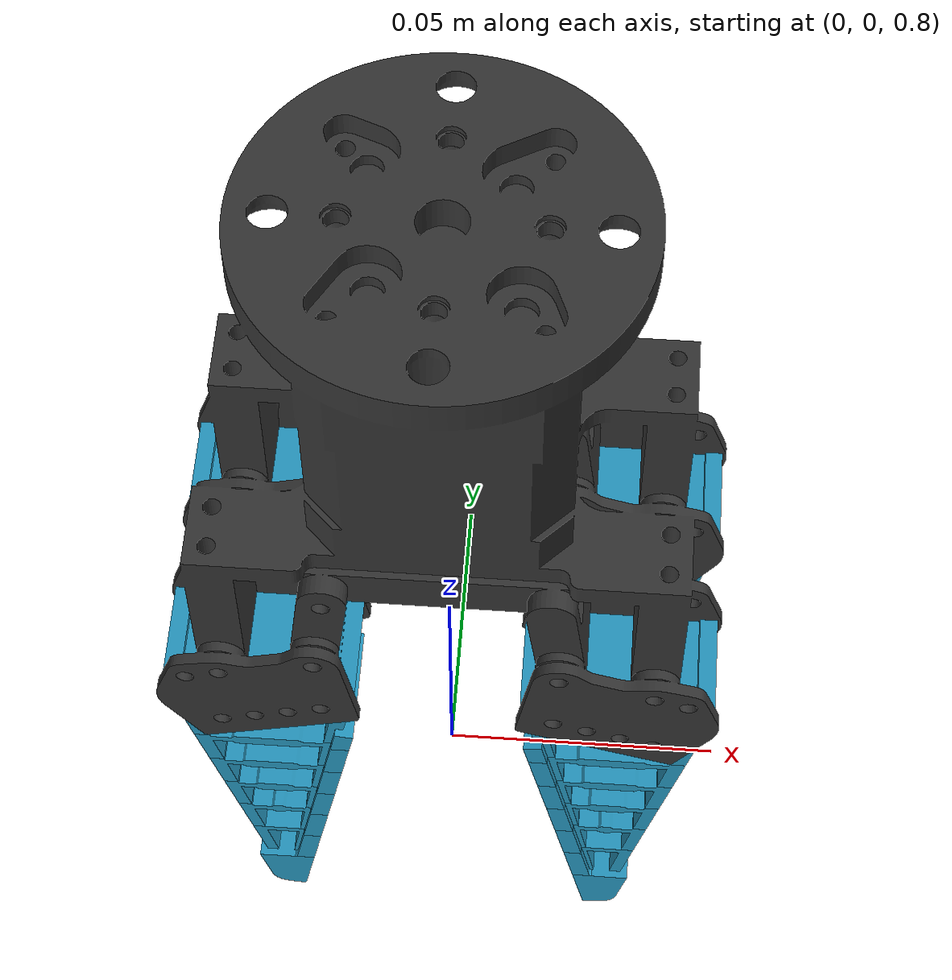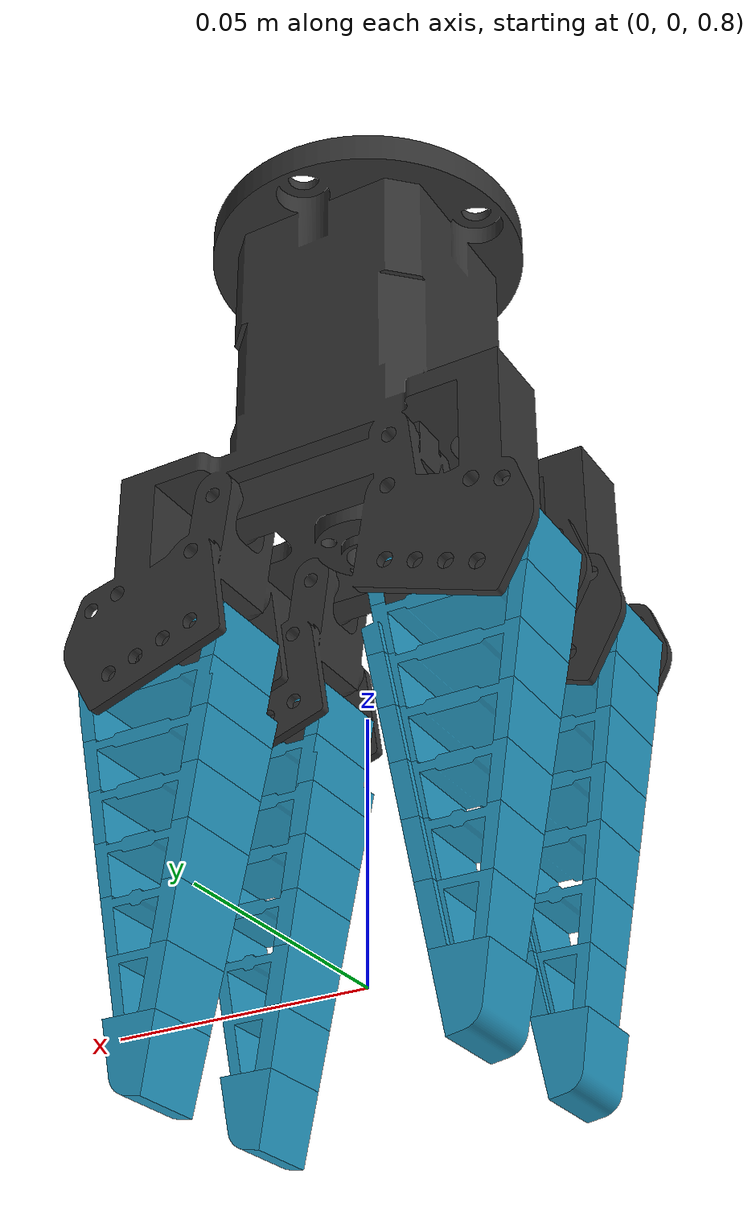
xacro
<?xml version="1.0"?>
<robot name="fin_ray_gripper" xmlns:xacro="http://ros.org/wiki/xacro">

  <material name="soft_blue">
    <color rgba="0.145 0.588 0.745 1.0"/>
  </material>

  <material name="preto_claro">
    <color rgba="0.2 0.2 0.2 1.0"/>
  </material>

  <link name="world"/>

  <joint name="world_to_base" type="fixed">
    <parent link="world"/>
    <child link="base_garra"/>
    <origin xyz="0 0 0.96" rpy="3.14159265 0 0"/>
  </joint>

  <link name="base_garra">

    <inertial>
      <origin xyz="0 0 0" rpy="0 0 0"/>
      <mass value="0.150"/>
      <inertia ixx="1e-4" ixy="0.0" ixz="0.0" iyy="1e-4" iyz="0.0" izz="1e-4"/>
    </inertial>

    <visual>
      <geometry>
        <mesh filename="package://fin_ray_description/meshes/base_garra.stl" scale="0.001 0.001 0.001"/>
      </geometry>
      <material name="preto_claro"/>
    </visual>

    <collision>
      <origin xyz="0 0 0" rpy="0 0 0"/>
      <geometry>
        <mesh filename="package://fin_ray_description/meshes/base_garra.stl" scale="0.001 0.001 0.001"/>
      </geometry>
    </collision>

  </link>

  <gazebo reference="base_garra">
    <material>Gazebo/DarkGrey</material>
    <mu1>1.2</mu1>
    <mu2>1.2</mu2>
  </gazebo>

  <xacro:macro name="contato_soft" params="ref material mu1:=1.2 mu2:=1.2 kp:=3000.0 kd:=300.0 maxVel:=0.005 minDepth:=0.002">
    <gazebo reference="${ref}">
      <material>${material}</material>
      <mu1>${mu1}</mu1>
      <mu2>${mu2}</mu2>
      <kp>${kp}</kp>
      <kd>${kd}</kd>
      <maxVel>${maxVel}</maxVel>
      <minDepth>${minDepth}</minDepth>
    </gazebo>
  </xacro:macro>

  <xacro:macro name="costeleta_prismatica" params="prefix num nome_mesh parent m cx cy cz ixx ixy ixz iyy iyz izz sx:=0.001 lim_lower:=-0.02 lim_upper:=0.0 box_x box_y box_z spring_stiffness:=100.0 spring_reference:=0.0">

    <joint name="${prefix}joint_${num}_prismatica" type="prismatic">
      <parent link="${parent}"/>
      <child link="${prefix}link_${num}"/>
      <axis xyz="1 0 0"/>
      <origin xyz="0 0 0" rpy="0 0 0"/>
      <limit lower="${lim_lower}" upper="${lim_upper}" effort="5.0" velocity="0.5"/>
      <dynamics damping="0.5" friction="0.1"/>
    </joint>

    <link name="${prefix}link_${num}">
      <inertial>
        <origin xyz="${cx} ${cy} ${cz}" rpy="0 0 0"/>
        <mass value="${m}"/>
        <inertia ixx="${ixx}" ixy="${ixy}" ixz="${ixz}" iyy="${iyy}" iyz="${iyz}" izz="${izz}"/>
      </inertial>

      <visual>
        <geometry>
          <mesh filename="package://fin_ray_description/meshes/${nome_mesh}" scale="${sx} 0.001 0.001"/>
        </geometry>
        <material name="soft_blue"/>
      </visual>

      <collision>
        <origin xyz="${cx} ${cy} ${cz}" rpy="0 0 0"/>
        <geometry>
          <box size="${box_x} ${box_y} ${box_z}"/>
        </geometry>
      </collision>
    </link>

    <xacro:contato_soft ref="${prefix}link_${num}" material="Gazebo/Turquoise"/>

    <gazebo reference="${prefix}joint_${num}_prismatica">
      <implicitSpringDamper>true</implicitSpringDamper>
      <springStiffness>${spring_stiffness}</springStiffness>
      <springReference>${spring_reference}</springReference>
    </gazebo>

  </xacro:macro>

  <joint name="dedo1_base_to_joint_1_revolute" type="revolute">
    <parent link="base_garra"/>
    <child link="dedo1_link_1_costeleta"/>
    <axis xyz="0 0 1"/>
    <origin xyz="0.030142 -0.017000 0.094917" rpy="1.5708 0 0"/>
    <limit lower="-0.5" upper="0.325" effort="10.0" velocity="1.0"/>
  </joint>

  <link name="dedo1_link_1_costeleta">

    <inertial>
      <origin xyz="-0.000001 0.003101 0.0" rpy="0 0 0"/>
      <mass value="0.00274"/>
      <inertia ixx="94.946e-9" ixy="-0.001e-9" ixz="0.0" iyy="402.004e-9" iyz="0.0" izz="348.968e-9"/>
    </inertial>

    <visual>
      <geometry>
        <mesh filename="package://fin_ray_description/meshes/1_costeleta_mirror.stl" scale="0.001 0.001 0.001"/>
      </geometry>
      <material name="soft_blue"/>
    </visual>

    <collision>
      <origin xyz="-0.000001 0.003101 0.0" rpy="0 0 0"/>
      <geometry>
        <box size="0.010127 0.032522 0.018000"/>
      </geometry>
    </collision>

  </link>

  <xacro:contato_soft ref="dedo1_link_1_costeleta" material="Gazebo/Turquoise"/>

  <joint name="dedo1_segurador" type="fixed">
    <parent link="dedo1_link_1_costeleta"/>
    <child link="dedo1_segurador_link"/>
    <origin xyz="0 0 0" rpy="0 0 0"/>
  </joint>

  <link name="dedo1_segurador_link">

    <inertial>
      <origin xyz="0.0 0.006268 0.0" rpy="0 0 0"/>
      <mass value="0.003051"/>
      <inertia ixx="100.003e-9" ixy="0.003e-9" ixz="0.0" iyy="247.363e-9" iyz="0.0" izz="182.614e-9"/>
    </inertial>

    <visual>
      <geometry>
        <mesh filename="package://fin_ray_description/meshes/segurador_parafuso_mirror.stl" scale="0.001 0.001 0.001"/>
      </geometry>
      <material name="preto_claro"/>
    </visual>

    <collision>
      <origin xyz="0.0 0.006268 0.0" rpy="0 0 0"/>
      <geometry>
        <box size="0.008458 0.025865 0.018000"/>
      </geometry>
    </collision>

  </link>

  <xacro:contato_soft ref="dedo1_segurador_link" material="Gazebo/DarkGrey"/>

  <xacro:costeleta_prismatica prefix="dedo1_" num="2" nome_mesh="2_costeleta_mirror.stl" parent="dedo1_link_1_costeleta"
    m="0.002782" cx="-0.001438" cy="0.013609" cz="0.0"
    ixx="102.946e-9" ixy="14.488e-9" ixz="0.0" iyy="363.633e-9" iyz="0.0" izz="309.347e-9"
    sx="0.001" lim_lower="0.0" lim_upper="0.02"
    box_x="0.010000" box_y="0.029944" box_z="0.020751"
    />

  <xacro:costeleta_prismatica prefix="dedo1_" num="3" nome_mesh="3_costeleta_mirror.stl" parent="dedo1_link_2"
    m="0.002661" cx="-0.002411" cy="0.023613" cz="0.0"
    ixx="95.420e-9" ixy="7.926e-9" ixz="0.0" iyy="294.288e-9" iyz="0.0" izz="243.857e-9"
    sx="0.001" lim_lower="0.0" lim_upper="0.02"
    box_x="0.010000" box_y="0.027251" box_z="0.020227"
    />

  <xacro:costeleta_prismatica prefix="dedo1_" num="4" nome_mesh="4_costeleta_mirror.stl" parent="dedo1_link_3"
    m="0.002318" cx="-0.002282" cy="0.033746" cz="0.0"
    ixx="77.746e-9" ixy="5.720e-9" ixz="0.0" iyy="200.206e-9" iyz="0.0" izz="162.299e-9"
    sx="0.001" lim_lower="0.0" lim_upper="0.02"
    box_x="0.010000" box_y="0.023725" box_z="0.019329"
    />

  <xacro:costeleta_prismatica prefix="dedo1_" num="5" nome_mesh="5_costeleta_mirror.stl" parent="dedo1_link_4"
    m="0.001978" cx="-0.002140" cy="0.043930" cz="0.0"
    ixx="62.099e-9" ixy="3.680e-9" ixz="0.0" iyy="129.713e-9" iyz="0.0" izz="102.135e-9"
    sx="0.001" lim_lower="0.0" lim_upper="0.02"
    box_x="0.010000" box_y="0.020198" box_z="0.018430"
    />

  <xacro:costeleta_prismatica prefix="dedo1_" num="6" nome_mesh="6_costeleta_mirror.stl" parent="dedo1_link_5"
    m="0.001707" cx="-0.001998" cy="0.054462" cz="0.0"
    ixx="52.007e-9" ixy="1.884e-9" ixz="0.0" iyy="82.174e-9" iyz="0.0" izz="63.973e-9"
    sx="0.001" lim_lower="0.0" lim_upper="0.02"
    box_x="0.010573" box_y="0.016671" box_z="0.017531"
    />

  <xacro:costeleta_prismatica prefix="dedo1_" num="7" nome_mesh="7_costeleta_mirror.stl" parent="dedo1_link_6"
    m="0.001471" cx="-0.001682" cy="0.065419" cz="0.0"
    ixx="43.517e-9" ixy="0.641e-9" ixz="0.0" iyy="48.019e-9" iyz="0.0" izz="37.198e-9"
    sx="0.001" lim_lower="0.0" lim_upper="0.02"
    box_x="0.010976" box_y="0.012943" box_z="0.016580"
    />

  <xacro:costeleta_prismatica prefix="dedo1_" num="8" nome_mesh="8_ponta_mirror.stl" parent="dedo1_link_7"
    m="0.002019" cx="-0.000306" cy="0.077317" cz="0.0"
    ixx="65.725e-9" ixy="0.808e-9" ixz="0.0" iyy="50.261e-9" iyz="0.0" izz="39.336e-9"
    sx="0.001" lim_lower="0.0" lim_upper="0.02"
    box_x="0.013623" box_y="0.010392" box_z="0.015710"
    />

  <joint name="dedo2_base_to_joint_1_revolute" type="revolute">
    <parent link="base_garra"/>
    <child link="dedo2_link_1_costeleta"/>
    <axis xyz="0 0 1"/>
    <origin xyz="-0.030142 -0.017000 0.094917" rpy="1.5708 0 0"/>
    <limit lower="-0.325" upper="0.5" effort="10.0" velocity="1.0"/>
  </joint>

  <link name="dedo2_link_1_costeleta">

    <inertial>
      <origin xyz="0.000001 0.003101 0.0" rpy="0 0 0"/>
      <mass value="0.002740"/>
      <inertia ixx="94.946e-9" ixy="0.001e-9" ixz="7.451e-15" iyy="402.004e-9" iyz="3.633e-15" izz="348.968e-9"/>
    </inertial>

    <visual>
      <geometry>
        <mesh filename="package://fin_ray_description/meshes/1_costeleta.stl" scale="0.001 0.001 0.001"/>
      </geometry>
      <material name="soft_blue"/>
    </visual>

    <collision>
      <origin xyz="0.000001 0.003101 0.0" rpy="0 0 0"/>
      <geometry>
        <box size="0.010127 0.032522 0.018000"/>
      </geometry>
    </collision>

  </link>

  <xacro:contato_soft ref="dedo2_link_1_costeleta" material="Gazebo/Turquoise"/>

  <joint name="dedo2_segurador" type="fixed">
    <parent link="dedo2_link_1_costeleta"/>
    <child link="dedo2_segurador_link"/>
    <origin xyz="0 0 0" rpy="0 0 0"/>
  </joint>

  <link name="dedo2_segurador_link">

    <inertial>
      <origin xyz="0.00005726 0.006268 0.0" rpy="0 0 0"/>
      <mass value="0.003051"/>
      <inertia ixx="100.003e-9" ixy="-0.003e-9" ixz="0.0" iyy="247.363e-9" iyz="0.0" izz="182.614e-9"/>
    </inertial>

    <visual>
      <geometry>
        <mesh filename="package://fin_ray_description/meshes/segurador_parafuso.stl" scale="0.001 0.001 0.001"/>
      </geometry>
      <material name="preto_claro"/>
    </visual>

    <collision>
      <origin xyz="0.00005726 0.006268 0.0" rpy="0 0 0"/>
      <geometry>
        <box size="0.008458 0.025865 0.018000"/>
      </geometry>
    </collision>

  </link>

  <xacro:contato_soft ref="dedo2_segurador_link" material="Gazebo/DarkGrey"/>

  <xacro:costeleta_prismatica prefix="dedo2_" num="2" nome_mesh="2_costeleta.stl" parent="dedo2_link_1_costeleta"
    m="0.002782" cx="0.001438" cy="0.013609" cz="0.0"
    ixx="102.946e-9" ixy="-14.488e-9" ixz="0.0" iyy="363.633e-9" iyz="0.0" izz="309.347e-9"
    box_x="0.010000" box_y="0.029944" box_z="0.020751"
    />

  <xacro:costeleta_prismatica prefix="dedo2_" num="3" nome_mesh="3_costeleta.stl" parent="dedo2_link_2"
    m="0.002661" cx="0.002411" cy="0.023613" cz="0.0"
    ixx="95.420e-9" ixy="-7.926e-9" ixz="0.0" iyy="294.288e-9" iyz="0.0" izz="243.857e-9"
    box_x="0.010000" box_y="0.027251" box_z="0.020227"
    />

  <xacro:costeleta_prismatica prefix="dedo2_" num="4" nome_mesh="4_costeleta.stl" parent="dedo2_link_3"
    m="0.002318" cx="0.002282" cy="0.033746" cz="0.0"
    ixx="77.746e-9" ixy="-5.720e-9" ixz="0.0" iyy="200.206e-9" iyz="0.0" izz="162.299e-9"
    box_x="0.010000" box_y="0.023725" box_z="0.019329"
    />

  <xacro:costeleta_prismatica prefix="dedo2_" num="5" nome_mesh="5_costeleta.stl" parent="dedo2_link_4"
    m="0.001978" cx="0.002140" cy="0.043930" cz="0.0"
    ixx="62.099e-9" ixy="-3.680e-9" ixz="0.0" iyy="129.713e-9" iyz="0.0" izz="102.135e-9"
    box_x="0.010000" box_y="0.020198" box_z="0.018430"
    />

  <xacro:costeleta_prismatica prefix="dedo2_" num="6" nome_mesh="6_costeleta.stl" parent="dedo2_link_5"
    m="0.001707" cx="0.001998" cy="0.054462" cz="0.0"
    ixx="52.007e-9" ixy="-1.884e-9" ixz="0.0" iyy="82.174e-9" iyz="0.0" izz="63.973e-9"
    box_x="0.010573" box_y="0.016671" box_z="0.017531"
    />

  <xacro:costeleta_prismatica prefix="dedo2_" num="7" nome_mesh="7_costeleta.stl" parent="dedo2_link_6"
    m="0.001471" cx="0.001682" cy="0.065419" cz="0.0"
    ixx="43.517e-9" ixy="-0.641e-9" ixz="0.0" iyy="48.019e-9" iyz="0.0" izz="37.198e-9"
    box_x="0.010976" box_y="0.012943" box_z="0.016580"
    />

  <xacro:costeleta_prismatica prefix="dedo2_" num="8" nome_mesh="8_ponta.stl" parent="dedo2_link_7"
    m="0.002019" cx="0.000306" cy="0.077317" cz="0.0"
    ixx="65.725e-9" ixy="-0.808e-9" ixz="0.0" iyy="50.261e-9" iyz="0.0" izz="39.336e-9"
    box_x="0.013623" box_y="0.010392" box_z="0.015710"
    />

  <joint name="dedo3_base_to_joint_1_revolute" type="revolute">
    <parent link="base_garra"/>
    <child link="dedo3_link_1_costeleta"/>
    <axis xyz="0 0 1"/>
    <origin xyz="-0.030142 0.017000 0.094917" rpy="1.5708 0 0"/>
    <limit lower="-0.325" upper="0.5" effort="10.0" velocity="1.0"/>
  </joint>

  <link name="dedo3_link_1_costeleta">

    <inertial>
      <origin xyz="0.000001 0.003101 0.0" rpy="0 0 0"/>
      <mass value="0.002740"/>
      <inertia ixx="94.946e-9" ixy="0.001e-9" ixz="7.451e-15" iyy="402.004e-9" iyz="3.633e-15" izz="348.968e-9"/>
    </inertial>

    <visual>
      <geometry>
        <mesh filename="package://fin_ray_description/meshes/1_costeleta.stl" scale="0.001 0.001 0.001"/>
      </geometry>
      <material name="soft_blue"/>
    </visual>

    <collision>
      <origin xyz="0.000001 0.003101 0.0" rpy="0 0 0"/>
      <geometry>
        <box size="0.010127 0.032522 0.018000"/>
      </geometry>
    </collision>

  </link>

  <xacro:contato_soft ref="dedo3_link_1_costeleta" material="Gazebo/Turquoise"/>

  <joint name="dedo3_segurador" type="fixed">
    <parent link="dedo3_link_1_costeleta"/>
    <child link="dedo3_segurador_link"/>
    <origin xyz="0 0 0" rpy="0 0 0"/>
  </joint>

  <link name="dedo3_segurador_link">

    <inertial>
      <origin xyz="0.00005726 0.006268 0.0" rpy="0 0 0"/>
      <mass value="0.003051"/>
      <inertia ixx="100.003e-9" ixy="-0.003e-9" ixz="0.0" iyy="247.363e-9" iyz="0.0" izz="182.614e-9"/>
    </inertial>

    <visual>
      <geometry>
        <mesh filename="package://fin_ray_description/meshes/segurador_parafuso.stl" scale="0.001 0.001 0.001"/>
      </geometry>
      <material name="preto_claro"/>
    </visual>

    <collision>
      <origin xyz="0.00005726 0.006268 0.0" rpy="0 0 0"/>
      <geometry>
        <box size="0.008458 0.025865 0.018000"/>
      </geometry>
    </collision>

  </link>

  <xacro:contato_soft ref="dedo3_segurador_link" material="Gazebo/DarkGrey"/>

  <xacro:costeleta_prismatica prefix="dedo3_" num="2" nome_mesh="2_costeleta.stl" parent="dedo3_link_1_costeleta"
    m="0.002782" cx="0.001438" cy="0.013609" cz="0.0"
    ixx="102.946e-9" ixy="-14.488e-9" ixz="0.0" iyy="363.633e-9" iyz="0.0" izz="309.347e-9"
    box_x="0.010000" box_y="0.029944" box_z="0.020751"
    />

  <xacro:costeleta_prismatica prefix="dedo3_" num="3" nome_mesh="3_costeleta.stl" parent="dedo3_link_2"
    m="0.002661" cx="0.002411" cy="0.023613" cz="0.0"
    ixx="95.420e-9" ixy="-7.926e-9" ixz="0.0" iyy="294.288e-9" iyz="0.0" izz="243.857e-9"
    box_x="0.010000" box_y="0.027251" box_z="0.020227"
    />

  <xacro:costeleta_prismatica prefix="dedo3_" num="4" nome_mesh="4_costeleta.stl" parent="dedo3_link_3"
    m="0.002318" cx="0.002282" cy="0.033746" cz="0.0"
    ixx="77.746e-9" ixy="-5.720e-9" ixz="0.0" iyy="200.206e-9" iyz="0.0" izz="162.299e-9"
    box_x="0.010000" box_y="0.023725" box_z="0.019329"
    />

  <xacro:costeleta_prismatica prefix="dedo3_" num="5" nome_mesh="5_costeleta.stl" parent="dedo3_link_4"
    m="0.001978" cx="0.002140" cy="0.043930" cz="0.0"
    ixx="62.099e-9" ixy="-3.680e-9" ixz="0.0" iyy="129.713e-9" iyz="0.0" izz="102.135e-9"
    box_x="0.010000" box_y="0.020198" box_z="0.018430"
    />

  <xacro:costeleta_prismatica prefix="dedo3_" num="6" nome_mesh="6_costeleta.stl" parent="dedo3_link_5"
    m="0.001707" cx="0.001998" cy="0.054462" cz="0.0"
    ixx="52.007e-9" ixy="-1.884e-9" ixz="0.0" iyy="82.174e-9" iyz="0.0" izz="63.973e-9"
    box_x="0.010573" box_y="0.016671" box_z="0.017531"
    />

  <xacro:costeleta_prismatica prefix="dedo3_" num="7" nome_mesh="7_costeleta.stl" parent="dedo3_link_6"
    m="0.001471" cx="0.001682" cy="0.065419" cz="0.0"
    ixx="43.517e-9" ixy="-0.641e-9" ixz="0.0" iyy="48.019e-9" iyz="0.0" izz="37.198e-9"
    box_x="0.010976" box_y="0.012943" box_z="0.016580"
    />

  <xacro:costeleta_prismatica prefix="dedo3_" num="8" nome_mesh="8_ponta.stl" parent="dedo3_link_7"
    m="0.002019" cx="0.000306" cy="0.077317" cz="0.0"
    ixx="65.725e-9" ixy="-0.808e-9" ixz="0.0" iyy="50.261e-9" iyz="0.0" izz="39.336e-9"
    box_x="0.013623" box_y="0.010392" box_z="0.015710"
    />

   <joint name="dedo4_base_to_joint_1_revolute" type="revolute">
    <parent link="base_garra"/>
    <child link="dedo4_link_1_costeleta"/>
    <axis xyz="0 0 1"/>
    <origin xyz="0.030142 0.017000 0.094917" rpy="1.5708 0 0"/>
    <limit lower="-0.5" upper="0.325" effort="10.0" velocity="1.0"/>
  </joint>

  <link name="dedo4_link_1_costeleta">

    <inertial>
      <origin xyz="-0.000001 0.003101 0.0" rpy="0 0 0"/>
      <mass value="0.00274"/>
      <inertia ixx="94.946e-9" ixy="-0.001e-9" ixz="0.0" iyy="402.004e-9" iyz="0.0" izz="348.968e-9"/>
    </inertial>

    <visual>
      <geometry>
        <mesh filename="package://fin_ray_description/meshes/1_costeleta_mirror.stl" scale="0.001 0.001 0.001"/>
      </geometry>
      <material name="soft_blue"/>
    </visual>

    <collision>
      <origin xyz="-0.000001 0.003101 0.0" rpy="0 0 0"/>
      <geometry>
        <box size="0.010127 0.032522 0.018000"/>
      </geometry>
    </collision>

  </link>

  <xacro:contato_soft ref="dedo4_link_1_costeleta" material="Gazebo/Turquoise"/>

  <joint name="dedo4_segurador" type="fixed">
    <parent link="dedo4_link_1_costeleta"/>
    <child link="dedo4_segurador_link"/>
    <origin xyz="0 0 0" rpy="0 0 0"/>
  </joint>

  <link name="dedo4_segurador_link">

    <inertial>
      <origin xyz="0.0 0.006268 0.0" rpy="0 0 0"/>
      <mass value="0.003051"/>
      <inertia ixx="100.003e-9" ixy="0.003e-9" ixz="0.0" iyy="247.363e-9" iyz="0.0" izz="182.614e-9"/>
    </inertial>

    <visual>
      <geometry>
        <mesh filename="package://fin_ray_description/meshes/segurador_parafuso_mirror.stl" scale="0.001 0.001 0.001"/>
      </geometry>
      <material name="preto_claro"/>
    </visual>

    <collision>
      <origin xyz="0.0 0.006268 0.0" rpy="0 0 0"/>
      <geometry>
        <box size="0.008458 0.025865 0.018000"/>
      </geometry>
    </collision>

  </link>

  <xacro:contato_soft ref="dedo4_segurador_link" material="Gazebo/DarkGrey"/>

  <xacro:costeleta_prismatica prefix="dedo4_" num="2" nome_mesh="2_costeleta_mirror.stl" parent="dedo4_link_1_costeleta"
    m="0.002782" cx="-0.001438" cy="0.013609" cz="0.0"
    ixx="102.946e-9" ixy="14.488e-9" ixz="0.0" iyy="363.633e-9" iyz="0.0" izz="309.347e-9"
    sx="0.001" lim_lower="0.0" lim_upper="0.02"
    box_x="0.010000" box_y="0.029944" box_z="0.020751"
    />

  <xacro:costeleta_prismatica prefix="dedo4_" num="3" nome_mesh="3_costeleta_mirror.stl" parent="dedo4_link_2"
    m="0.002661" cx="-0.002411" cy="0.023613" cz="0.0"
    ixx="95.420e-9" ixy="7.926e-9" ixz="0.0" iyy="294.288e-9" iyz="0.0" izz="243.857e-9"
    sx="0.001" lim_lower="0.0" lim_upper="0.02"
    box_x="0.010000" box_y="0.027251" box_z="0.020227"
    />

  <xacro:costeleta_prismatica prefix="dedo4_" num="4" nome_mesh="4_costeleta_mirror.stl" parent="dedo4_link_3"
    m="0.002318" cx="-0.002282" cy="0.033746" cz="0.0"
    ixx="77.746e-9" ixy="5.720e-9" ixz="0.0" iyy="200.206e-9" iyz="0.0" izz="162.299e-9"
    sx="0.001" lim_lower="0.0" lim_upper="0.02"
    box_x="0.010000" box_y="0.023725" box_z="0.019329"
    />

  <xacro:costeleta_prismatica prefix="dedo4_" num="5" nome_mesh="5_costeleta_mirror.stl" parent="dedo4_link_4"
    m="0.001978" cx="-0.002140" cy="0.043930" cz="0.0"
    ixx="62.099e-9" ixy="3.680e-9" ixz="0.0" iyy="129.713e-9" iyz="0.0" izz="102.135e-9"
    sx="0.001" lim_lower="0.0" lim_upper="0.02"
    box_x="0.010000" box_y="0.020198" box_z="0.018430"
    />

  <xacro:costeleta_prismatica prefix="dedo4_" num="6" nome_mesh="6_costeleta_mirror.stl" parent="dedo4_link_5"
    m="0.001707" cx="-0.001998" cy="0.054462" cz="0.0"
    ixx="52.007e-9" ixy="1.884e-9" ixz="0.0" iyy="82.174e-9" iyz="0.0" izz="63.973e-9"
    sx="0.001" lim_lower="0.0" lim_upper="0.02"
    box_x="0.010573" box_y="0.016671" box_z="0.017531"
    />

  <xacro:costeleta_prismatica prefix="dedo4_" num="7" nome_mesh="7_costeleta_mirror.stl" parent="dedo4_link_6"
    m="0.001471" cx="-0.001682" cy="0.065419" cz="0.0"
    ixx="43.517e-9" ixy="0.641e-9" ixz="0.0" iyy="48.019e-9" iyz="0.0" izz="37.198e-9"
    sx="0.001" lim_lower="0.0" lim_upper="0.02"
    box_x="0.010976" box_y="0.012943" box_z="0.016580"
    />

  <xacro:costeleta_prismatica prefix="dedo4_" num="8" nome_mesh="8_ponta_mirror.stl" parent="dedo4_link_7"
    m="0.002019" cx="-0.000306" cy="0.077317" cz="0.0"
    ixx="65.725e-9" ixy="0.808e-9" ixz="0.0" iyy="50.261e-9" iyz="0.0" izz="39.336e-9"
    sx="0.001" lim_lower="0.0" lim_upper="0.02"
    box_x="0.013623" box_y="0.010392" box_z="0.015710"
    />

  <ros2_control name="GazeboSystem" type="system">
    <hardware>
      <plugin>gazebo_ros2_control/GazeboSystem</plugin>
    </hardware>

    <joint name="dedo1_base_to_joint_1_revolute">
      <command_interface name="position">
        <param name="min">-0.5</param>
        <param name="max">0.5</param>
      </command_interface>
      <state_interface name="position"/>
      <state_interface name="velocity"/>
    </joint>

    <joint name="dedo1_joint_2_prismatica"><state_interface name="position"/></joint>
    <joint name="dedo1_joint_3_prismatica"><state_interface name="position"/></joint>
    <joint name="dedo1_joint_4_prismatica"><state_interface name="position"/></joint>
    <joint name="dedo1_joint_5_prismatica"><state_interface name="position"/></joint>
    <joint name="dedo1_joint_6_prismatica"><state_interface name="position"/></joint>
    <joint name="dedo1_joint_7_prismatica"><state_interface name="position"/></joint>
    <joint name="dedo1_joint_8_prismatica"><state_interface name="position"/></joint>

    <joint name="dedo2_base_to_joint_1_revolute">
      <command_interface name="position">
        <param name="min">-0.5</param>
        <param name="max">0.5</param>
      </command_interface>
      <state_interface name="position"/>
      <state_interface name="velocity"/>
    </joint>

    <joint name="dedo2_joint_2_prismatica"><state_interface name="position"/></joint>
    <joint name="dedo2_joint_3_prismatica"><state_interface name="position"/></joint>
    <joint name="dedo2_joint_4_prismatica"><state_interface name="position"/></joint>
    <joint name="dedo2_joint_5_prismatica"><state_interface name="position"/></joint>
    <joint name="dedo2_joint_6_prismatica"><state_interface name="position"/></joint>
    <joint name="dedo2_joint_7_prismatica"><state_interface name="position"/></joint>
    <joint name="dedo2_joint_8_prismatica"><state_interface name="position"/></joint>

    <joint name="dedo3_base_to_joint_1_revolute">
      <command_interface name="position">
        <param name="min">-0.5</param>
        <param name="max">0.5</param>
      </command_interface>
      <state_interface name="position"/>
      <state_interface name="velocity"/>
    </joint>

    <joint name="dedo3_joint_2_prismatica"><state_interface name="position"/></joint>
    <joint name="dedo3_joint_3_prismatica"><state_interface name="position"/></joint>
    <joint name="dedo3_joint_4_prismatica"><state_interface name="position"/></joint>
    <joint name="dedo3_joint_5_prismatica"><state_interface name="position"/></joint>
    <joint name="dedo3_joint_6_prismatica"><state_interface name="position"/></joint>
    <joint name="dedo3_joint_7_prismatica"><state_interface name="position"/></joint>
    <joint name="dedo3_joint_8_prismatica"><state_interface name="position"/></joint>

    <joint name="dedo4_base_to_joint_1_revolute">
      <command_interface name="position">
        <param name="min">-0.5</param>
        <param name="max">0.5</param>
      </command_interface>
      <state_interface name="position"/>
      <state_interface name="velocity"/>
    </joint>

    <joint name="dedo4_joint_2_prismatica"><state_interface name="position"/></joint>
    <joint name="dedo4_joint_3_prismatica"><state_interface name="position"/></joint>
    <joint name="dedo4_joint_4_prismatica"><state_interface name="position"/></joint>
    <joint name="dedo4_joint_5_prismatica"><state_interface name="position"/></joint>
    <joint name="dedo4_joint_6_prismatica"><state_interface name="position"/></joint>
    <joint name="dedo4_joint_7_prismatica"><state_interface name="position"/></joint>
    <joint name="dedo4_joint_8_prismatica"><state_interface name="position"/></joint>

  </ros2_control>

  <gazebo>
    <plugin filename="libgazebo_ros2_control.so" name="gazebo_ros2_control">
      <parameters>$(find fin_ray_description)/config/controllers.yaml</parameters>
    </plugin>
  </gazebo>

</robot>
